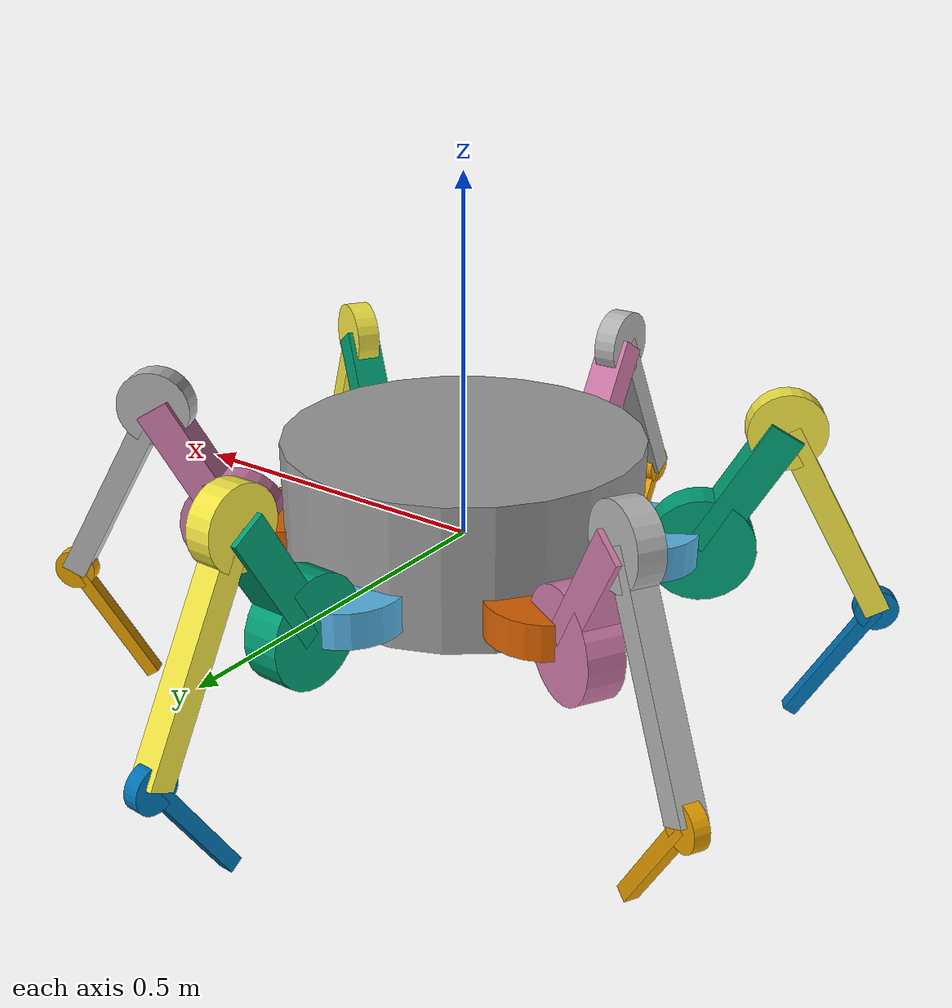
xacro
<?xml version="1.0"?>
<robot xmlns:xacro="http://www.ros.org/wiki/xacro" name="spiderbot">
	<xacro:property name="body_radius" value="0.25"/>
	<xacro:property name="body_height" value="0.2"/>
	<xacro:property name="body_mass" value="0.4"/>
	<xacro:property name="leg_pan_connector_radius" value="0.08"/>
	<xacro:property name="leg_pan_connector_height" value="0.05"/>
	<xacro:property name="leg_pan_vel" value="1.0"/>
	<xacro:property name="leg_pan_max_angle" value="0.5236"/>
	<xacro:property name="leg_pan_min_angle" value="-0.5236"/>

	<xacro:property name="upper_leg_mass" value="0.1"/>
	<xacro:property name="upper_leg_length" value="0.2"/>
	<xacro:property name="upper_leg_width" value="0.05"/>
	<xacro:property name="upper_leg_thickness" value="0.05"/>
	<xacro:property name="upper_leg_vel" value="1.0"/>
	<xacro:property name="upper_leg_min_angle" value="-1.57075"/>
	<xacro:property name="upper_leg_max_angle" value="1.57075"/>
	<xacro:property name="upper_leg_starting_angle" value="-1.05"/>

	<xacro:property name="middle_leg_mass" value="0.08"/>
	<xacro:property name="middle_leg_length" value="0.3"/>
	<xacro:property name="middle_leg_width" value="0.035"/>
	<xacro:property name="middle_leg_thickness" value="0.035"/>
	<xacro:property name="middle_leg_vel" value="1.0"/>
	<xacro:property name="middle_leg_min_angle" value="0.0"/>
	<xacro:property name="middle_leg_max_angle" value="2.3562"/>
	<xacro:property name="middle_leg_starting_angle" value="2.10"/>

	<xacro:property name="lower_leg_mass" value="0.06"/>
	<xacro:property name="lower_leg_length" value="0.2"/>
	<xacro:property name="lower_leg_width" value="0.020"/>
	<xacro:property name="lower_leg_thickness" value="0.020"/>
	<xacro:property name="lower_leg_vel" value="1.0"/>
	<xacro:property name="lower_leg_min_angle" value="0.0"/>
	<xacro:property name="lower_leg_max_angle" value="1.57075"/>
	<xacro:property name="lower_leg_starting_angle" value="1.05"/>

	<xacro:macro name="leg_segment" params="joint_name parent_name link_name size_x size_y size_z mass joint_upper joint_lower joint_starting joint_vel joint_x color">
		<joint name="${joint_name}" type="revolute">
			<parent link="${parent_name}"/>
			<child link="${link_name}"/>
			<axis xyz="0 1 0"/>
			<origin rpy="0 ${joint_starting} 0" xyz="${joint_x} 0 0"/>
			<limit effort="1000" lower="${joint_lower - joint_starting}" upper="${joint_upper - joint_starting}" velocity="${joint_vel}"/>
		</joint>
		<transmission name="${joint_name}_transmission">
            <type>transmission_interface/SimpleTransmission</type>
            <actuator name="${joint_name}_actuator">
                <mechanicalReduction>1</mechanicalReduction>
               </actuator>
            <joint name="${joint_name}">
                <hardwareInterface>hardware_interface/PositionJointInterface</hardwareInterface>
            </joint>
        </transmission>

		<link name="${link_name}">
			<inertial>
				<origin xyz="${size_x/2} 0 ${size_z/2}" rpy="0 0 0"/>
				<mass value="${mass}"/>
				<inertia ixx="${mass*(size_y*size_y + size_z*size_z)/12}"  ixy="0"  ixz="0"
					     iyy="${mass*(size_x*size_x + size_z*size_z)/12}" iyz="0"
					     izz="${mass*(size_x*size_x + size_y*size_y)/12}" />
			</inertial>
			<!-- joint visual -->
			<visual>
				<geometry>
					<cylinder length="${size_y}" radius="${3*size_z/2}"/>
				</geometry>
				<origin xyz="0 0 0" rpy="1.57075 0 0"/>
			</visual>
			<collision>
				<geometry>
					<cylinder length="${size_y}" radius="${3*size_z/2}"/>
				</geometry>
				<origin xyz="0 0 0" rpy="1.57075 0 0"/>
			</collision>

			<!-- leg visual -->
			<visual>
				<geometry>
					<box size="${size_x} ${size_y} ${size_z}"/>
				</geometry>
				<origin xyz="${size_x/2} 0 0" rpy="0 0 0"/>
			</visual>
			<collision>
				<geometry>
					<box size="${size_x} ${size_y} ${size_z}"/>
				</geometry>
				<origin xyz="${size_x/2} 0 0" rpy="0 0 0"/>
			</collision>
		</link>
		<gazebo reference="${joint_name}">
			<kp>1000000.0</kp>
            <kd>1.0</kd>
            <mu1>0.8</mu1>
            <mu2>0.8</mu2>
            <material>Gazebo/${color}</material>
        </gazebo>
	</xacro:macro>

	<xacro:macro name="leg" params="number x y z yaw">
		<!-- leg pan connector -->
		<joint name="leg_${number}_pan_joint" type="revolute">
            <parent link="base_link"/>
            <child link="leg_${number}_pan_connector"/>
            <axis xyz="0 0 1"/>
            <origin rpy="0 0 ${yaw}" xyz="${x} ${y} ${z}"/>
            <limit effort="1000" lower="${leg_pan_min_angle}" upper="${leg_pan_max_angle}" velocity="${leg_pan_vel}"/>
        </joint>
        <transmission name="leg_${number}_pan_joint_transmission">
            <type>transmission_interface/SimpleTransmission</type>
            <actuator name="leg_${number}_pan_joint_actuator">
                <mechanicalReduction>1</mechanicalReduction>
               </actuator>
            <joint name="leg_${number}_pan_joint">
                <hardwareInterface>hardware_interface/PositionJointInterface</hardwareInterface>
            </joint>
        </transmission>

        <link name="leg_${number}_pan_connector">
        	<visual>
        		<geometry>
					<cylinder length="${leg_pan_connector_height}" radius="${leg_pan_connector_radius}"/>
				</geometry>
				<origin rpy="0 0 0" xyz="0 0 0"/>
			</visual>
		</link>

		<!-- upper leg -->
		<xacro:leg_segment joint_name="leg_${number}_upper_joint" parent_name="leg_${number}_pan_connector" link_name="leg_${number}_upper" size_x="${upper_leg_length}" size_y="${upper_leg_width}" size_z="${upper_leg_thickness}" mass="${upper_leg_mass}" joint_upper="${upper_leg_max_angle}" joint_lower="${upper_leg_min_angle}" joint_starting="${upper_leg_starting_angle}" joint_vel="${upper_leg_vel}" joint_x="${leg_pan_connector_radius}" color="Red" />

   		<!-- middle leg -->
		<xacro:leg_segment joint_name="leg_${number}_middle_joint" parent_name="leg_${number}_upper" link_name="leg_${number}_middle" size_x="${middle_leg_length}" size_y="${middle_leg_width}" size_z="${middle_leg_thickness}" mass="${middle_leg_mass}" joint_upper="${middle_leg_max_angle}" joint_lower="${middle_leg_min_angle}" joint_starting="${middle_leg_starting_angle}" joint_vel="${middle_leg_vel}" joint_x="${upper_leg_length}" color="Blue" />

		<!-- lower leg -->
		<xacro:leg_segment joint_name="leg_${number}_lower_joint" parent_name="leg_${number}_middle" link_name="leg_${number}_lower" size_x="${lower_leg_length}" size_y="${lower_leg_width}" size_z="${lower_leg_thickness}" mass="${lower_leg_mass}" joint_upper="${lower_leg_max_angle}" joint_lower="${lower_leg_min_angle}" joint_starting="${lower_leg_starting_angle}" joint_vel="${lower_leg_vel}" joint_x="${middle_leg_length}" color="Green" />

	</xacro:macro>

	<link name="base_link">
		<inertial>
            <origin xyz="0 0 ${body_height/4}" rpy="0 0 0"/>
            <mass value="${body_mass}"/>
            <inertia ixx="${body_mass*body_radius*body_radius/4.0 + body_mass*body_height*body_height/12.0}"  ixy="0"  ixz="0"
                     iyy="${body_mass*body_radius*body_radius/4.0 + body_mass*body_height*body_height/12.0}" iyz="0"
                     izz="${body_mass*body_radius*body_radius/2}"/>
        </inertial>
		<visual>
			<geometry>
				<cylinder length="${body_height}" radius="${body_radius}"/>
			</geometry>
			<origin xyz="0 0 ${body_height/4}" rpy="0 0 0"/>
		</visual>
		<collision>
			<geometry>
				<cylinder length="${body_height}" radius="${body_radius}"/>
			</geometry>
			<origin xyz="0 0 ${body_height/4}" rpy="0 0 0"/>
		</collision>
	</link>
	<gazebo reference="base_link">
		<kp>1000000.0</kp>
		<kd>1.0</kd>
		<mu1>0.8</mu1>
		<mu2>0.8</mu2>
		<material>Gazebo/Grey</material>
	</gazebo>
	<!-- 4 leg setup -->

	<!-- 6 leg setup -->
	<xacro:leg number="1" x="${body_radius*0.866}" y="${-body_radius*0.5}" z="0" yaw="-0.5236"/>
	<xacro:leg number="2" x="0" y="${-body_radius}" z="0" yaw="-1.57075"/>
	<xacro:leg number="3" x="${-body_radius*0.866}" y="${-body_radius*0.5}" z="0" yaw="-2.6180"/>
	<xacro:leg number="4" x="${-body_radius*0.866}" y="${body_radius*0.5}" z="0" yaw="2.6180"/>
	<xacro:leg number="5" x="0" y="${body_radius}" z="0" yaw="1.57075"/>
	<xacro:leg number="6" x="${body_radius*0.866}" y="${body_radius*0.5}" z="0" yaw="0.5236"/>

	<gazebo>
        <plugin name="gazebo_ros_control" filename="libgazebo_ros_control.so">
            <legacyModeNS>False</legacyModeNS>
            <robotNamespace>/</robotNamespace>
        </plugin>
    </gazebo>
</robot>
